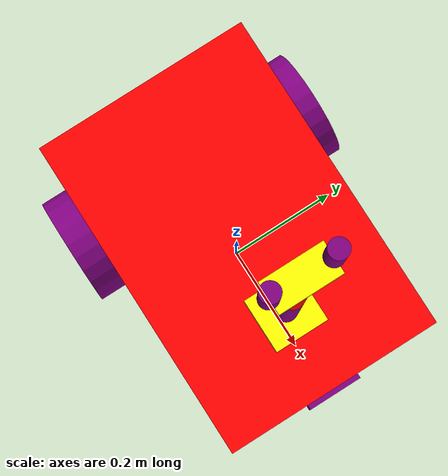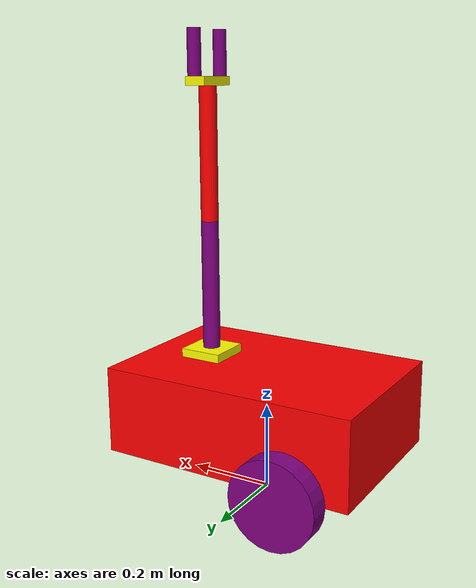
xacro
<?xml version="1.0"?>
<robot name="my_robot" xmlns:xacro="http://www.ros.org/wiki/xacro" >

    <xacro:include filename="common_properties.xacro" />
    <xacro:include filename="mobile_base.xacro"/>
    <xacro:include filename="mobile_base_gz.xacro"/>
    <xacro:include filename="mobile_base.ros2_control.xacro" />

    <xacro:include filename="arm.xacro"/>
    <xacro:include filename="arm_gazebo.xacro"/>
    <xacro:include filename="camera.xacro" />

    <joint name="mobile_base_arm_joint" type="fixed">
        <parent link="base_link"/>
        <child link="arm_base_link"/>
        <origin xyz="${base_length/4} 0.0 ${base_height}" rpy="0.0 0.0 0.0"/>
    </joint>
</robot>

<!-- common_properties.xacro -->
<robot xmlns:xacro="http://www.ros.org/wiki/xacro" >

    <material name="purple">
        <color rgba="0.5 0 0.5 1" />
    </material>
    <material name="red">
        <color rgba="1 0 0 1" />
    </material>
    <material name="orange">
        <color rgba="1.0 0.5 0 1" />
    </material>
    <material name="yellow">
        <color rgba="1.0 1.0 0 1" />
    </material>

    <xacro:macro name="box_collition_inertia" params="m x y z o_xyz o_rpy">
        <collision>
            <geometry>
                <box size="${x} ${y} ${z}" />
            </geometry>
            <origin xyz="0 0 ${z / 2.0}" rpy="0 0 0" />
        </collision>
        <inertial>
            <mass value="${m}"/>
            <origin xyz="${o_xyz}" rpy="${o_rpy}"/>
            <inertia    ixx="${(m/12) * (y*y + z*z)}"   ixy="0"   ixz="0"
                        iyy="${(m/12) * (x*x + z*z)}"   iyz="0"
                        izz="${(m/12) * (x*x + y*y)}"   />
        </inertial>

    </xacro:macro>

    <xacro:macro name="cylinder_collition_inertia" params="m r l o_xyz o_rpy">
        <collision>
                <geometry>
                    <sphere radius="${r}" />
                </geometry>
                <origin xyz="0 0 0" rpy="0 0 0" />
            </collision>
        <inertial>
            <mass value="${m}"/>
            <origin xyz="${o_xyz}" rpy="${o_rpy}"/>
            <inertia    ixx="${(1/12) * m * (3*r*r+l*l)}"   ixy="0"   ixz="0"
                        iyy="${(1/12) * m * (3*r*r+l*l)}"   iyz="0"
                        izz="${(1/12) *m*r*r}"   />
        </inertial>

    </xacro:macro>

    <xacro:macro name="cylinder2_collition_inertia" params="m r l o_xyz o_rpy">
        <collision>
                <geometry>
                    <cylinder radius="${r}" length="${l}"/>
                </geometry>
                <origin xyz="${o_xyz}" rpy="0 0 0" />
            </collision>
        <inertial>
            <mass value="${m}"/>
            <origin xyz="${o_xyz}" rpy="${o_rpy}"/>
            <inertia    ixx="${(1/12) * m * (3*r*r+l*l)}"   ixy="0"   ixz="0"
                        iyy="${(1/12) * m * (3*r*r+l*l)}"   iyz="0"
                        izz="${(1/12) *m*r*r}"   />
        </inertial>

    </xacro:macro>

    <xacro:macro name="sphere_collition_inertia" params="m r o_xyz o_rpy">
        <collision>
            <geometry>
                <sphere radius="${wheel_radius / 2.0}" />
            </geometry>
            <origin xyz="0 0 0" rpy="0 0 0" />
        </collision>
        <inertial>
            <mass value="${m}"/>
            <origin xyz="${o_xyz}" rpy="${o_rpy}"/>
            <inertia    ixx="${(2/5) * m * r*r}"   ixy="0"   ixz="0"
                        iyy="${(2/5) * m * r*r}"   iyz="0"
                        izz="${(2/5) * m * r*r}"   />
        </inertial>

    </xacro:macro>
</robot>

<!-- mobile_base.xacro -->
<robot xmlns:xacro="http://www.ros.org/wiki/xacro">

    <xacro:property name="base_length" value="0.6" />
    <xacro:property name="base_width" value="0.4" />
    <xacro:property name="base_height" value="0.2" />
    <xacro:property name="wheel_radius" value="0.1" />
    <xacro:property name="wheel_length" value="0.05" />

    <link name="base_footprint" />

    <link name="base_link">
        <visual>
            <geometry>
                <box size="${base_length} ${base_width} ${base_height}" />
            </geometry>
            <origin xyz="0 0 ${base_height / 2.0}" rpy="0 0 0" />
            <material name="red" />
        </visual>

        <xacro:box_collition_inertia m="5.0" x="${base_length}" y="${base_width}" z="${base_height}"
                           o_xyz="0 0 ${base_height / 2.0}" o_rpy="0 0 0" />
    </link>

    <xacro:macro name="wheel_link" params="prefix">
        <link name="${prefix}_wheel_link">
            <visual>
                <geometry>
                    <cylinder radius="${wheel_radius}" length="${wheel_length}" />
                </geometry>
                <origin xyz="0 0 0" rpy= "${pi/2.0} 0 0" />
                <material name="purple" />
            </visual>

            <xacro:cylinder_collition_inertia m="1.0" r="${wheel_radius}" l="${wheel_length}"
                            o_xyz="0 0 0" o_rpy="${pi/2.0} 0 0" />
        </link>
    </xacro:macro>

    <xacro:wheel_link prefix="right" />
    <xacro:wheel_link prefix="left" />

    <link name="caster_wheel_link">
        <visual>
            <geometry>
                <sphere radius="${wheel_radius / 2.0}" />
            </geometry>
            <origin xyz="0 0 0" rpy="0 0 0" />
            <material name="purple" />
        </visual>

        <xacro:sphere_collition_inertia m="0.5" r="${wheel_radius / 2.0}"
                              o_xyz="0 0 0" o_rpy="0 0 0" />
    </link>

    <joint name="base_joint" type="fixed">
        <parent link="base_footprint" />
        <child link="base_link" />
        <origin xyz="0 0 ${wheel_radius}" rpy="0 0 0"/>
    </joint>

    <joint name="base_right_wheel_joint" type="continuous">
        <parent link="base_link"/>
        <child link="right_wheel_link"/>
        <origin xyz="${- base_length/4.0} ${-(base_width+wheel_length)/2.0} 0" rpy="0 0 0"/>
        <axis xyz="0 1 0"/>
    </joint>

    <joint name="base_left_wheel_joint" type="continuous">
        <parent link="base_link"/>
        <child link="left_wheel_link"/>
        <origin xyz="${- base_length/4.0} ${(base_width+wheel_length)/2.0} 0" rpy="0 0 0"/>
        <axis xyz="0 1 0"/>
    </joint>

    <joint name="base_caster_wheel_joint" type="fixed">
        <parent link="base_link" />
        <child link="caster_wheel_link" />
        <origin xyz="${base_length / 3.0} 0 ${-wheel_radius / 2.0}" rpy="0 0 0" />
    </joint>

</robot>

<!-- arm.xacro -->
<robot xmlns:xacro="http://www.ros.org/wiki/xacro">

    <xacro:property name="arm_base_length" value="0.1" />
    <xacro:property name="arm_base_width" value="0.1" />
    <xacro:property name="arm_base_height" value="0.02" />
    <xacro:property name="gripper_base_length" value="0.05" />
    <xacro:property name="gripper_base_width" value="0.1" />
    <xacro:property name="gripper_base_height" value="0.02" />
    <xacro:property name="arm_radius" value="0.02" />
    <xacro:property name="arm_length" value="0.3" />
    <xacro:property name="gripper_radius" value="0.015" />
    <xacro:property name="gripper_length" value="0.1" />

    <link name="arm_base_link">
        <visual>
            <geometry>
                <box size="${arm_base_length} ${arm_base_width} ${arm_base_height}" />
            </geometry>
            <origin xyz="0 0 ${arm_base_height / 2.0}" rpy="0 0 0" />
            <material name="yellow" />
        </visual>

        <xacro:box_collition_inertia m="0.5" x="${arm_base_length}" y="${arm_base_width}" z="${arm_base_height}"
                           o_xyz="0 0 ${arm_base_height / 2.0}" o_rpy="0 0 0" />
    </link>

    <!-- PRIMER BRAZO -->
    <xacro:macro name="arm_link" params="prefix color o_xyz">
        <link name="${prefix}_arm_link">
            <visual>
                <geometry>
                    <cylinder radius="${arm_radius}" length="${arm_length}" />
                </geometry>
                <origin xyz="${o_xyz}" rpy="0 0 0" />
                <material name="${color}" />
            </visual>

            <xacro:cylinder2_collition_inertia m="0.3" r="${arm_radius}" l="${arm_length}"
                                    o_xyz="${o_xyz}" o_rpy="0 0 0" />
        </link>
    </xacro:macro>
    <xacro:arm_link prefix="first" color="purple" o_xyz="0 0 ${arm_length/2}" />
    <xacro:arm_link prefix="hand" color="red" o_xyz="0 0 ${arm_length/2}" />

    <link name="gripper_base_link">
        <visual>
            <geometry>
                <box size="${gripper_base_length} ${gripper_base_width} ${gripper_base_height}" />
            </geometry>
            <origin xyz="0 0 ${gripper_base_height / 2.0}" rpy="0 0 0" />
            <material name="yellow" />
        </visual>

        <xacro:box_collition_inertia m="0.5" x="${gripper_base_length}" y="${gripper_base_width}" z="${gripper_base_height}"
                           o_xyz="0 0 ${gripper_base_height / 2.0}" o_rpy="0 0 0" />
    </link>

    <!-- gripper -->
    <xacro:macro name="gripper_link" params="prefix color o_xyz">
        <link name="${prefix}_gripper_link">
            <visual>
                <geometry>
                    <cylinder radius="${gripper_radius}" length="${gripper_length}" />
                </geometry>
                <origin xyz="${o_xyz}" rpy="0 0 0" />
                <material name="${color}" />
            </visual>

            <xacro:cylinder2_collition_inertia m="0.3" r="${gripper_radius}" l="${gripper_length}"
                                    o_xyz="${o_xyz}" o_rpy="0 0 0" />
        </link>
    </xacro:macro>

    <xacro:gripper_link prefix="left" color="purple" o_xyz="0 0 ${gripper_length/2}" />
    <xacro:gripper_link prefix="right" color="purple" o_xyz="0 0 ${gripper_length/2}" />

    <joint name="first_joint" type="revolute">
        <parent link="arm_base_link"/>
        <child link="first_arm_link"/>
        <origin xyz="0 0 ${arm_base_height}" rpy="0 0 0"/>
        <axis xyz="0 1 0"/>
        <limit lower="0" upper="${pi/2}" effort="100" velocity="100"/>
        <dynamics friction="0.3" damping="0.3" />
    </joint>

    <joint name="second_joint" type="revolute">
        <parent link="first_arm_link" />
        <child link="hand_arm_link" />
        <origin xyz="0 0 ${arm_length}" rpy="0 0 0" />
        <axis xyz="0 1 0" />
        <limit lower="0.0" upper="${pi/2}" effort="100" velocity="100"/>
        <dynamics friction="0.3" damping="0.3" />
    </joint>

    <joint name="gripper_base_joint" type="fixed">
        <parent link="hand_arm_link"/>
        <child link="gripper_base_link"/>
        <origin xyz="0.0 0.0 ${arm_length}" rpy="0.0 0.0 0.0"/>
    </joint>

    <joint name="gripper_left_joint" type="revolute">
        <parent link="gripper_base_link"/>
        <child link="left_gripper_link"/>
        <origin xyz="0 -0.05 ${gripper_base_height}" rpy="0 0 0"/>
        <axis xyz="-1 0 0"/>
        <limit lower="0" upper="${pi/2}" effort="100" velocity="100"/>
        <dynamics friction="0.3" damping="0.3" />
    </joint>

    <joint name="gripper_right_joint" type="revolute">
        <parent link="gripper_base_link"/>
        <child link="right_gripper_link"/>
        <origin xyz="0 0.05 ${gripper_base_height}" rpy="0 0 0"/>
        <axis xyz="1 0 0"/>
        <limit lower="0" upper="${pi/2}" effort="100" velocity="100"/>
        <dynamics friction="0.3" damping="0.3" />
    </joint>

</robot>

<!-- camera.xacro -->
<robot xmlns:xacro="http://www.ros.org/wiki/xacro" >

    <xacro:property name="camera_length" value="0.01" />
    <xacro:property name="camera_width" value="0.1" />
    <xacro:property name="camera_height" value="0.05" />

    <link name="camera_link">
        <visual>
            <geometry>
                <box size="${camera_length} ${camera_width} ${camera_height}"/>
            </geometry>
            <material name="purple"/>
        </visual>
        <xacro:box_collition_inertia m="0.1" x="${camera_length}" y="${camera_width}" z="${camera_height}"
                           o_xyz="0 0 0" o_rpy="0 0 0" />

    </link>

    <joint name="base_camera_joint" type="fixed">
        <parent link="base_link"/>
        <child link="camera_link"/>
        <origin xyz="${base_length/2.0+camera_length/2.0} 0.0 ${base_height/2.0}" rpy="0.0 0.0 0.0"/>
    </joint>

    <link name="camera_link_optical" />

    <joint name="camera_optical_joint" type="fixed">
        <origin xyz="0.0 0.0 0.0" rpy="${-pi/2} 0.0 ${-pi/2}"/>
        <parent link="camera_link"/>
        <child link="camera_link_optical"/>
    </joint>

    <gazebo reference="camera_link" >
        <sensor name="camera" type="camera">
            <camera>
                <horizontal_fov>1.3962634</horizontal_fov>
                <image>
                    <width>640</width>
                    <height>480</height>
                    <format>R8G8B8</format>
                </image>
                <clip>
                    <near>0.1</near>
                    <far>15</far>
                </clip>
                <noise>
                    <type>gaussian</type>
                    <mean>0.0</mean>
                    <stddev>0.007</stddev>
                </noise>
                <optical_frame_id>camera_link_optical</optical_frame_id>
                <camera_info_topic>camera/camera_info</camera_info_topic>
            </camera>
            <always_on>1</always_on>
            <update_rate>20</update_rate>
            <topic>camera/image_raw</topic>
        </sensor>
    </gazebo>

</robot>
